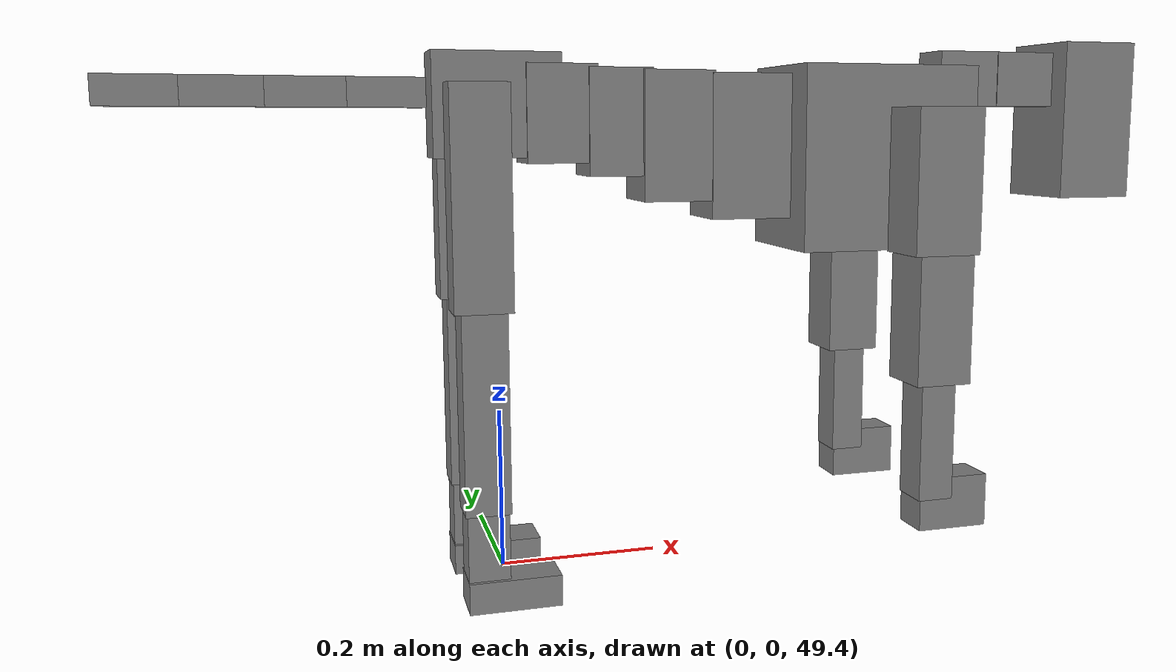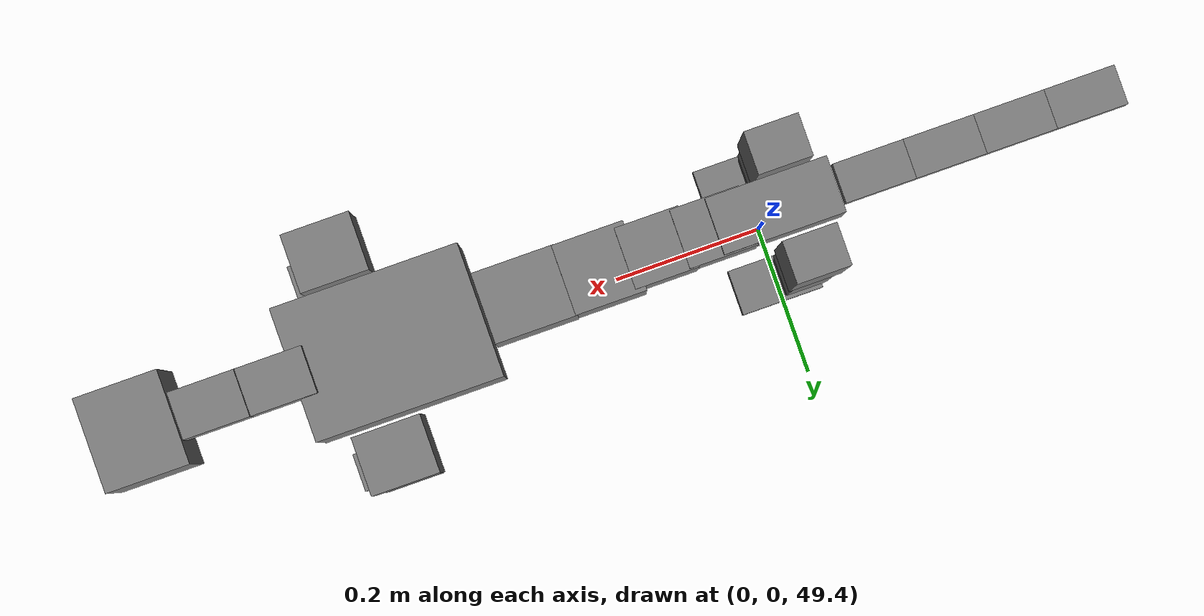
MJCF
<mujoco model="dog">

    <default>
        <joint armature="0.02" stiffness="1" damping="0.2" limited="true"/>
        <geom condim="3" friction="1 0.05 0.05" margin="0.01"/>
        <motor ctrllimited="true" ctrlrange="-1.0 1.0" forcelimited="true" gear="50"/>
    </default>

    <compiler inertiafromgeom="true" angle="radian"/>

    <option timestep="0.016" iterations="50" tolerance="1e-10" solver="Newton" jacobian="dense" cone="pyramidal"/>

    <size nconmax="20000" njmax="60000" nstack="5000000"/>
    <visual>
        <map force="0.1" zfar="30"/>
        <rgba haze="0.15 0.25 0.35 1"/>
        <quality shadowsize="2048"/>
        <global offwidth="800" offheight="800"/>
    </visual>

    <asset>
        <texture type="skybox" builtin="gradient" rgb1="0.3 0.5 0.7" rgb2="0 0 0" width="512" height="512"/>
        <texture name="texplane" type="2d" builtin="checker" rgb1=".2 .3 .4" rgb2=".1 0.15 0.2" width="512" height="512"
                 mark="cross" markrgb=".8 .8 .8"/>
        <texture name="texgeom" type="cube" builtin="flat" mark="cross" width="127" height="1278" rgb1="0.8 0.6 0.4"
                 rgb2="0.8 0.6 0.4" markrgb="1 1 1" random="0.01"/>

        <material name="matplane" reflectance="0.3" texture="texplane" texrepeat="1 1" texuniform="true"/>
        <material name="matgeom" texture="texgeom" texuniform="true" rgba="0.8 0.6 .4 1"/>
    </asset>

    <worldbody>
        <geom name="floor" pos="0 0 0" size="0 0 .25" type="plane" material="matplane" condim="3"/>

        <light directional="false" diffuse=".2 .2 .2" specular="0 0 0" pos="0 0 5" dir="0 0 -1" castshadow="false"/>
        <light mode="targetbodycom" target="torso" directional="false" diffuse=".8 .8 .8" specular="0.3 0.3 0.3"
               pos="0 0 4.0" dir="0 0 -1"/>

        <body name="root" pos="0 0 50">
            <freejoint name="root_1"/>
            <geom type="box" pos="0 0 -0.02" size="0.0774  0.0358  0.063" density="2030"/>

            <body name="spine1" pos="0.054 0 0">
                <joint name="spine1_y" axis="0 1 0" range="0 0.7" limited="true"/>
                <geom type="box" pos="0.02375 0 -0.03" size="0.04375  0.0375  0.05985" density="2030"/>

                <body name="spine2" pos="0.0612 0 0">
                    <joint name="spine2_y" axis="0 1 0" range="-0.15 0.15" limited="true"/>
                    <geom type="box" pos="0.03555  0  -0.04" size="0.04055  0.039  0.06615" density="2030"/>

                    <body name="spine3" pos="0.0730 0 0">
                        <joint name="spine3_y" axis="0 1 0" range="-0.15 0.15" limited="true"/>
                        <geom type="box" pos="0.03555  0  -0.057" size="0.04555  0.0445  0.081" density="2030"/>

                        <body name="spine4" pos="0.0780 0 0">
                            <joint name="spine4_y" axis="0 1 0" range="-0.15 0.15" limited="true"/>
                            <geom type="box" pos="0.05265  0  -0.07" size="0.05265  0.045  0.09135" density="2030"/>

                            <body name="torso" pos="0.1082 0 0">
                                <joint name="torso_y" axis="0 1 0" range="-0.15 0.15" limited="true"/>
                                <geom type="box" pos="0.11925  0  -0.085" size="0.11925  0.085  0.11745"
                                      density="2030"/>

                                <body name="neck1" pos="0.2160  0   0.0180">
                                    <joint name="neck1_y" axis="0 1 0" range="-1.2  -1" limited="true"/>
                                    <geom type="box" pos="0.0423  0  0" size="0.0423  0.03  0.036" density="2325"/>

                                    <body name="neck2" pos="0.0853  0  0">
                                        <joint name="neck2_y" axis="0 1 0" range="0.1  0" limited="true"/>
                                        <geom type="box" pos="0.0423  0  0" size="0.0423  0.03  0.036" density="2325"/>

                                        <body name="head" pos="0.0853  0  0">
                                            <joint name="head_y" axis="0 1 0" range="-0.3  -0.2" limited="true"/>
                                            <geom type="box" pos="0.0531  0  -0.055" size="0.0531  0.06  0.1044"
                                                  density="4030"/>

                                        </body>
                                    </body>
                                </body>

                                <body name="front_shoulder" pos="0.156  0   -0.0480">
                                    <joint name="front_shoulder_y" axis="0 1 0" range="-1 1.5" limited="true"/>
                                    <geom type="box" pos="0 0.13 -0.0643" size="0.0440  0.0376  0.0909" density="1158"/>
                                    <geom type="box" pos="0 -0.13 -0.0643" size="0.0440  0.0376  0.0909"
                                          density="1158"/>

                                    <body name="front_elbow" pos="0  0  -0.1286">
                                        <joint name="front_elbow_y" axis="0 1 0" range="-2 0" limited="true"/>
                                        <geom type="box" pos="0 0.13 -0.0946" size="0.0366  0.0375  0.0946"
                                              density="1081"/>
                                        <geom type="box" pos="0 -0.13 -0.0946" size="0.0366  0.0375  0.0946"
                                              density="1081"/>

                                        <body name="front_wrist" pos="0  0  -0.1892">
                                            <joint name="front_wrist_y" axis="0 1 0" range="-0.2 0" limited="true"/>
                                            <geom type="box" pos="0 0.13 -0.0689" size="0.0231  0.0256  0.0820"
                                                  density="1664"/>
                                            <geom type="box" pos="0 -0.13 -0.0689" size="0.0231  0.0256  0.0820"
                                                  density="1664"/>

                                            <body name="front_finger_end" pos="0  0  -0.1378">
                                                <joint name="front_finger_y" axis="0 1 0" range="-0.4 1"
                                                       limited="true"/>
                                                <geom type="box" pos="0.0255  0.13  -0.0188"
                                                      size="0.0467  0.0255  0.0338" density="1515"/>
                                                <geom type="box" pos="0.0255  -0.13  -0.0188"
                                                      size="0.0467  0.0255  0.0338" density="1515"/>

                                            </body>

                                        </body>
                                    </body>
                                </body>

                            </body>
                        </body>
                    </body>
                </body>
            </body>

            <body name="back_hip" pos="-0.03 0 -0.018">
                <joint name="back_hip_y" axis="0 1 0" range="-1.5 0.3" limited="true"/>
                <geom type="box" pos="0 0.07 -0.1102" size="0.0351  0.0276  0.1330" density="1154"/>
                <geom type="box" pos="0 -0.07 -0.1102" size="0.0351  0.0276  0.1330" density="1154"/>

                <body name="back_knee" pos="0  0  -0.2204">
                    <joint name="back_knee_y" axis="0 1 0" range="0 2.8" limited="true"/>
                    <geom type="box" pos="0 0.07 -0.1248" size="0.0274  0.0270  0.1404" density="1227"/>
                    <geom type="box" pos="0 -0.07 -0.1248" size="0.0274  0.0270  0.1404" density="1227"/>

                    <body name="back_ankle" pos="0  0  -0.2497">
                        <joint name="back_ankle_y" axis="0 1 0" range="-2.2 0" limited="true"/>
                        <geom type="box" pos="0 0.07 -0.0557" size="0.0251  0.0251  0.0669" density="1284"/>
                        <geom type="box" pos="0 -0.07 -0.0557" size="0.0251  0.0251  0.0669" density="1284"/>

                        <body name="back_toe_end" pos="0  0  -0.1113">
                            <joint name="back_toe_y" axis="0 1 0" range="-0.4 1" limited="true"/>
                            <geom type="box" pos="0.0306  0.07  -0.0042" size="0.0561  0.0306  0.0192" density="1515"/>
                            <geom type="box" pos="0.0306  -0.07  -0.0042" size="0.0561  0.0306  0.0192" density="1515"/>

                        </body>
                    </body>
                </body>
            </body>

            <body name="tail1" pos="-0.074 0 -0.006">
                <joint name="tail1_y" axis="0 1 0" range="-0.2 0.2" limited="true"/>
                <geom type="box" pos="-0.0536  0  0" size="0.045  0.025  0.0175" density="1587"/>

                <body name="tail2" pos="-0.09 0 0">
                    <joint name="tail2_y" axis="0 1 0" range="-0.2 0.2" limited="true"/>
                    <geom type="box" pos="-0.0536  0  0" size="0.045  0.025  0.0175" density="1587"/>

                    <body name="tail3" pos="-0.09 0 0">
                        <joint name="tail3_y" axis="0 1 0" range="-0.2 0.2" limited="true"/>
                        <geom type="box" pos="-0.0536  0  0" size="0.045  0.025  0.0175" density="1587"/>

                        <body name="tail4" pos="-0.09 0 0">
                            <joint name="tail4_y" axis="0 1 0" range="-0.2 0.2" limited="true"/>
                            <geom type="box" pos="-0.0536  0  0" size="0.045  0.025  0.0175" density="1587"/>

                        </body>
                    </body>
                </body>
            </body>
        </body>
    </worldbody>

    <actuator>
        <motor joint="spine1_y" forcerange="-150 150     "/>
        <motor joint="spine2_y" forcerange="-150 150     "/>
        <motor joint="spine3_y" forcerange="-150 150     "/>
        <motor joint="spine4_y" forcerange="-150 150     "/>
        <motor joint="torso_y" forcerange="-150 150     "/>
        <motor joint="neck1_y" forcerange="-100 100       "/>
        <motor joint="neck2_y" forcerange="-100 100       "/>
        <motor joint="head_y" forcerange="-150 150       "/>
        <motor joint="front_shoulder_y" forcerange="-162.57 188.30"/>
        <motor joint="front_elbow_y" forcerange="-174.67 197.78"/>
        <motor joint="front_wrist_y" forcerange="-92.81 112.36"/>
        <motor joint="front_finger_y" forcerange="-49.22 46.59"/>
        <motor joint="back_hip_y" forcerange="-294.84 272.73"/>
        <motor joint="back_knee_y" forcerange="-217.05 375.61"/>
        <motor joint="back_angle_y" forcerange="-171.92 130.25"/>
        <motor joint="back_toe_y" forcerange="-55.92 109.07"/>
        <motor joint="tail1_y" forcerange="-50 50     "/>
        <motor joint="tail2_y" forcerange="-50 50     "/>
        <motor joint="tail3_y" forcerange="-50 50     "/>
        <motor joint="tail4_y" forcerange="-50 50     "/>
    </actuator>
</mujoco>
